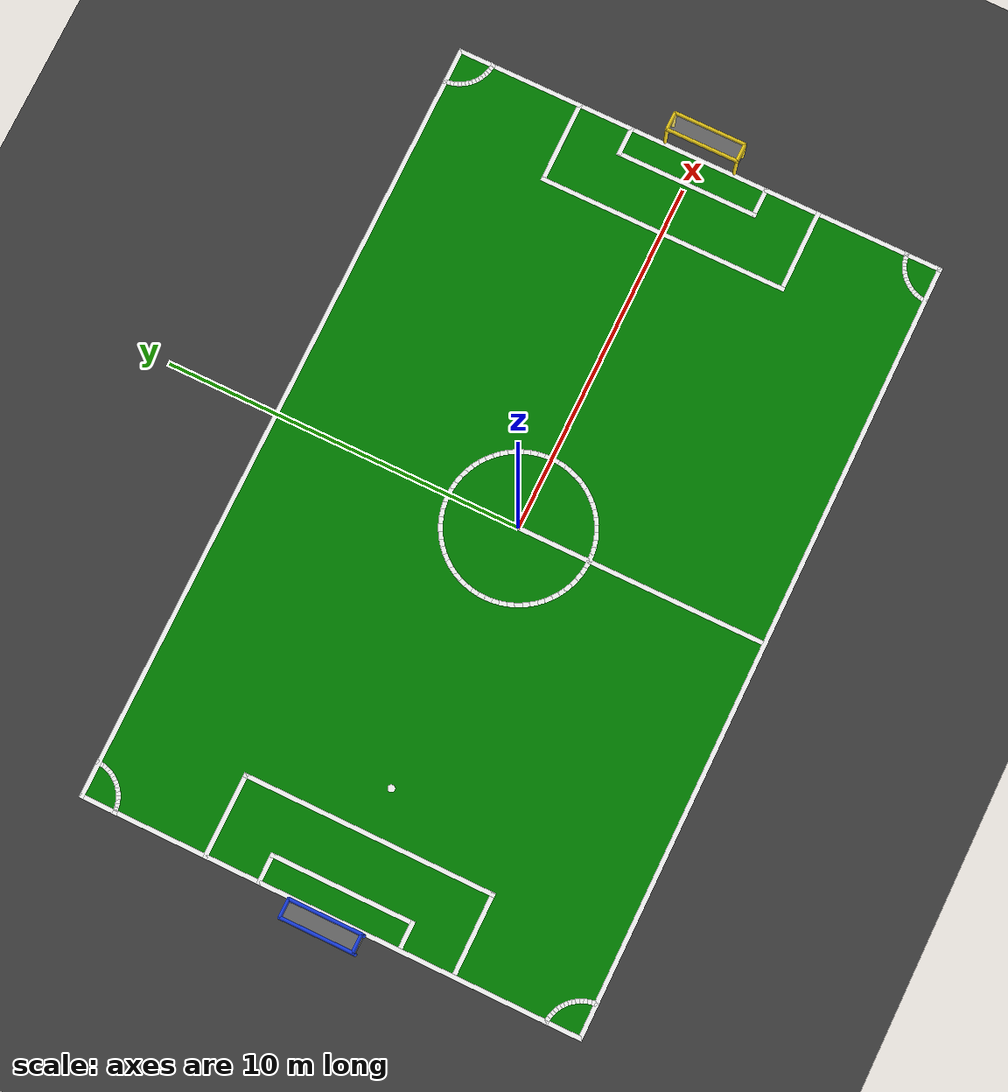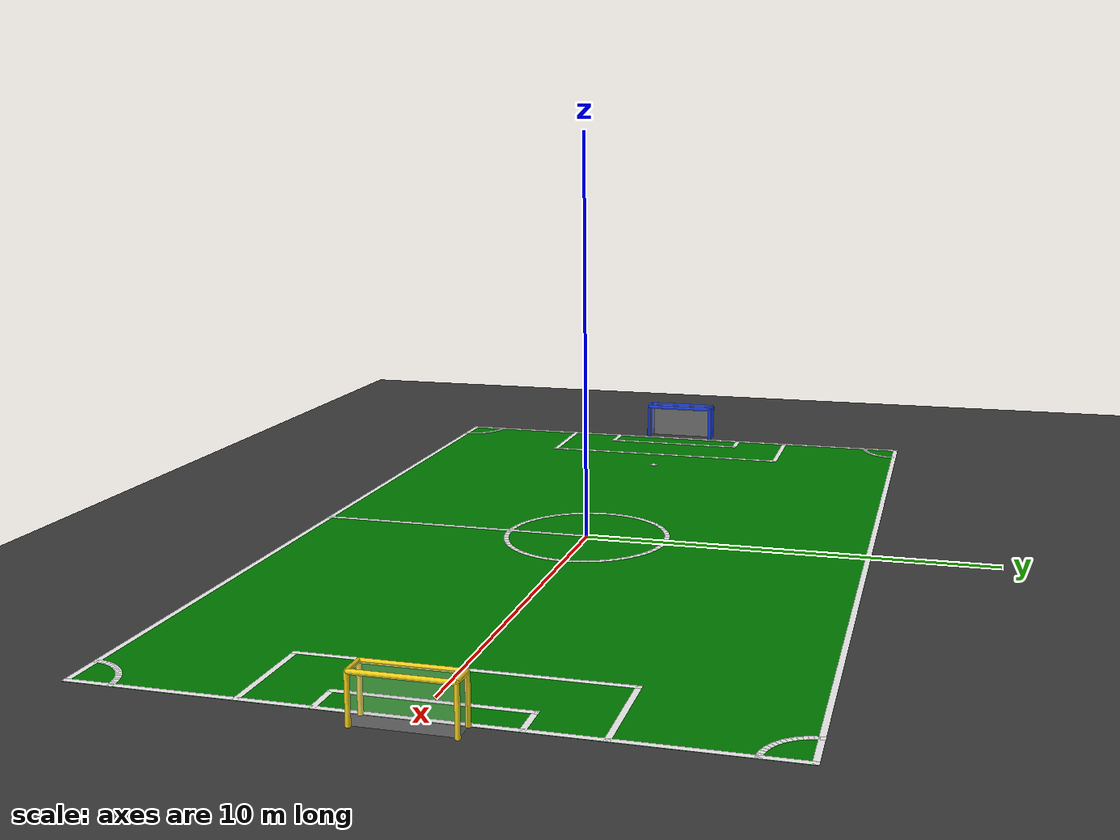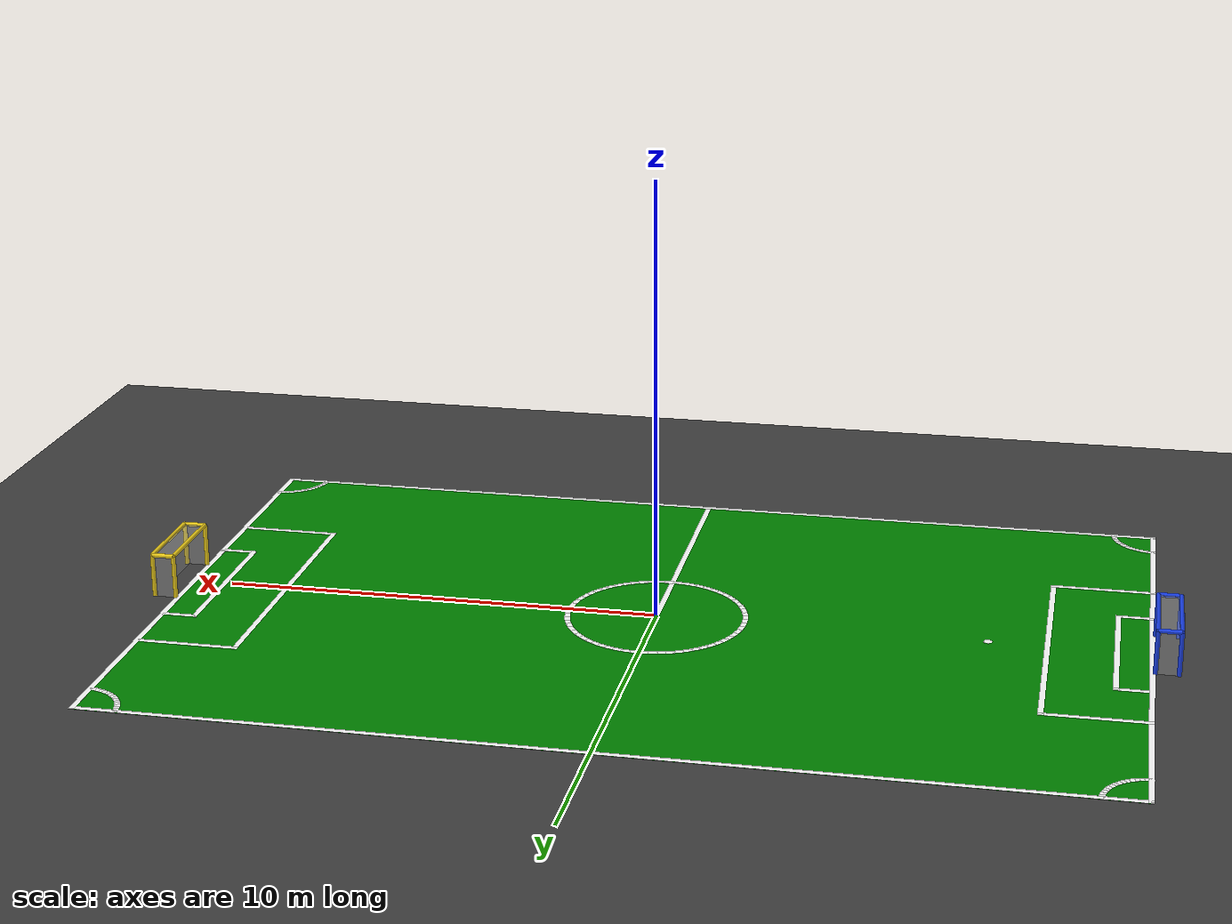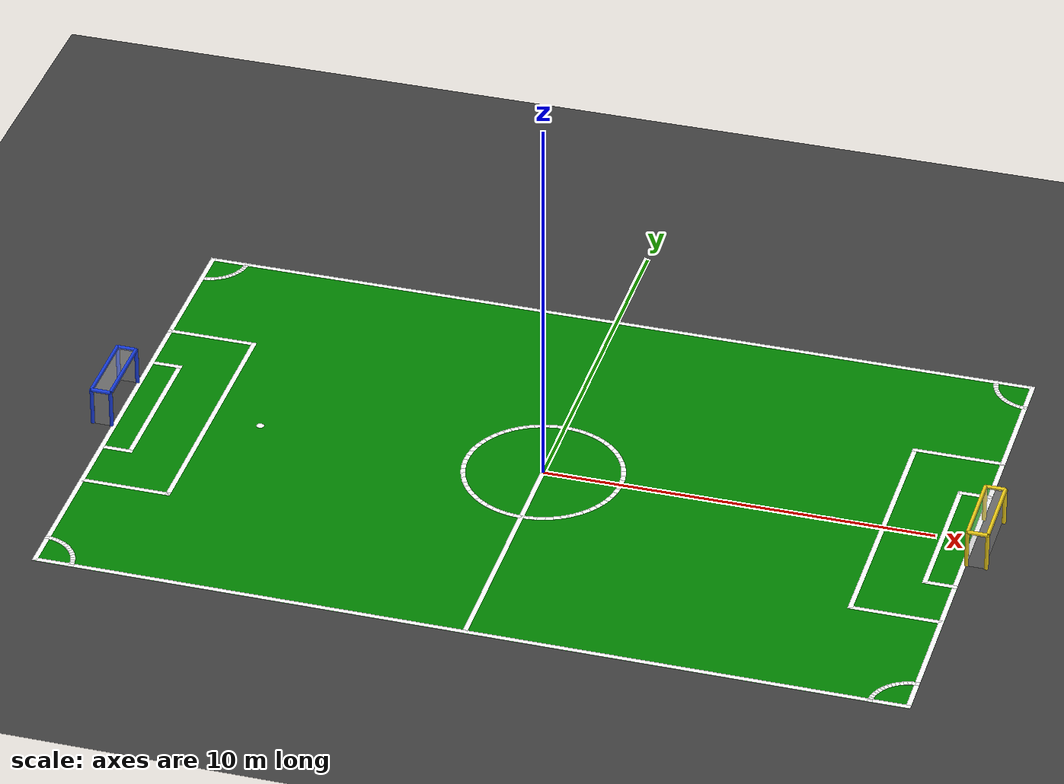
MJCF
<mujoco model="MuJoCo Model">
  <compiler angle="radian"/>

  <worldbody>
    <geom name="ground" size="0 0 0.01" type="plane" rgba="0.25 0.25 0.25 1"/>
    <camera name="top" pos="0 0 22"/>
    <light pos="0 0 20" dir="0 0 -1" type="directional"/>
    <body name="soccer_field">
      <geom name="field_pitch_1" size="11 7 0.0025" pos="0 0 0.0025" type="box" contype="0" conaffinity="0" group="2" mass="0" rgba="0 0.509804 0 1"/>
      <geom name="field_sideline_l_2" size="0.0625 7 0.0025" pos="-10.9375 0 0.0075" type="box" contype="0" conaffinity="0" group="2" mass="0" rgba="1 1 1 1"/>
      <geom name="field_sideline_r_3" size="0.0625 7 0.0025" pos="10.9375 0 0.0075" type="box" contype="0" conaffinity="0" group="2" mass="0" rgba="1 1 1 1"/>
      <geom name="field_endline_b_4" size="11 0.0625 0.0025" pos="0 -6.9375 0.0075" type="box" contype="0" conaffinity="0" group="2" mass="0" rgba="1 1 1 1"/>
      <geom name="field_endline_t_5" size="11 0.0625 0.0025" pos="0 6.9375 0.0075" type="box" contype="0" conaffinity="0" group="2" mass="0" rgba="1 1 1 1"/>
      <geom name="field_halfway_6" size="0.0625 7 0.0025" pos="0 0 0.0075" type="box" contype="0" conaffinity="0" group="2" mass="0" rgba="1 1 1 1"/>
      <geom name="field_center_mark_7" size="0.0625 0.0025" pos="0 0 0.0075" type="cylinder" contype="0" conaffinity="0" group="2" mass="0" rgba="1 1 1 1"/>
      <geom name="field_center_circle_8" size="0.106029 0.0625 0.0025" pos="1.99759 0.0981353 0.0075" quat="0.689541 0 0 0.724247" type="box" contype="0" conaffinity="0" group="2" mass="0" rgba="1 1 1 1"/>
      <geom name="field_center_circle_9" size="0.106029 0.0625 0.0025" pos="1.97835 0.293461 0.0075" quat="0.653173 0 0 0.757209" type="box" contype="0" conaffinity="0" group="2" mass="0" rgba="1 1 1 1"/>
      <geom name="field_center_circle_10" size="0.106029 0.0625 0.0025" pos="1.94006 0.48596 0.0075" quat="0.615232 0 0 0.788346" type="box" contype="0" conaffinity="0" group="2" mass="0" rgba="1 1 1 1"/>
      <geom name="field_center_circle_11" size="0.106029 0.0625 0.0025" pos="1.88309 0.67378 0.0075" quat="0.575808 0 0 0.817585" type="box" contype="0" conaffinity="0" group="2" mass="0" rgba="1 1 1 1"/>
      <geom name="field_center_circle_12" size="0.106029 0.0625 0.0025" pos="1.80798 0.85511 0.0075" quat="0.534998 0 0 0.844854" type="box" contype="0" conaffinity="0" group="2" mass="0" rgba="1 1 1 1"/>
      <geom name="field_center_circle_13" size="0.106029 0.0625 0.0025" pos="1.71546 1.02821 0.0075" quat="0.492898 0 0 0.870087" type="box" contype="0" conaffinity="0" group="2" mass="0" rgba="1 1 1 1"/>
      <geom name="field_center_circle_14" size="0.106029 0.0625 0.0025" pos="1.60642 1.1914 0.0075" quat="0.449611 0 0 0.893224" type="box" contype="0" conaffinity="0" group="2" mass="0" rgba="1 1 1 1"/>
      <geom name="field_center_circle_15" size="0.106029 0.0625 0.0025" pos="1.4819 1.34312 0.0075" quat="0.405241 0 0 0.91421" type="box" contype="0" conaffinity="0" group="2" mass="0" rgba="1 1 1 1"/>
      <geom name="field_center_circle_16" size="0.106029 0.0625 0.0025" pos="1.34312 1.4819 0.0075" quat="0.359895 0 0 0.932993" type="box" contype="0" conaffinity="0" group="2" mass="0" rgba="1 1 1 1"/>
      <geom name="field_center_circle_17" size="0.106029 0.0625 0.0025" pos="1.1914 1.60642 0.0075" quat="0.313682 0 0 0.949528" type="box" contype="0" conaffinity="0" group="2" mass="0" rgba="1 1 1 1"/>
      <geom name="field_center_circle_18" size="0.106029 0.0625 0.0025" pos="1.02821 1.71546 0.0075" quat="0.266713 0 0 0.963776" type="box" contype="0" conaffinity="0" group="2" mass="0" rgba="1 1 1 1"/>
      <geom name="field_center_circle_19" size="0.106029 0.0625 0.0025" pos="0.85511 1.80798 0.0075" quat="0.219101 0 0 0.975702" type="box" contype="0" conaffinity="0" group="2" mass="0" rgba="1 1 1 1"/>
      <geom name="field_center_circle_20" size="0.106029 0.0625 0.0025" pos="0.67378 1.88309 0.0075" quat="0.170962 0 0 0.985278" type="box" contype="0" conaffinity="0" group="2" mass="0" rgba="1 1 1 1"/>
      <geom name="field_center_circle_21" size="0.106029 0.0625 0.0025" pos="0.48596 1.94006 0.0075" quat="0.122411 0 0 0.99248" type="box" contype="0" conaffinity="0" group="2" mass="0" rgba="1 1 1 1"/>
      <geom name="field_center_circle_22" size="0.106029 0.0625 0.0025" pos="0.293461 1.97835 0.0075" quat="0.0735646 0 0 0.99729" type="box" contype="0" conaffinity="0" group="2" mass="0" rgba="1 1 1 1"/>
      <geom name="field_center_circle_23" size="0.106029 0.0625 0.0025" pos="0.0981353 1.99759 0.0075" quat="0.0245412 0 0 0.999699" type="box" contype="0" conaffinity="0" group="2" mass="0" rgba="1 1 1 1"/>
      <geom name="field_center_circle_24" size="0.106029 0.0625 0.0025" pos="-0.0981353 1.99759 0.0075" quat="-0.0245412 0 0 0.999699" type="box" contype="0" conaffinity="0" group="2" mass="0" rgba="1 1 1 1"/>
      <geom name="field_center_circle_25" size="0.106029 0.0625 0.0025" pos="-0.293461 1.97835 0.0075" quat="-0.0735646 0 0 0.99729" type="box" contype="0" conaffinity="0" group="2" mass="0" rgba="1 1 1 1"/>
      <geom name="field_center_circle_26" size="0.106029 0.0625 0.0025" pos="-0.48596 1.94006 0.0075" quat="-0.122411 0 0 0.99248" type="box" contype="0" conaffinity="0" group="2" mass="0" rgba="1 1 1 1"/>
      <geom name="field_center_circle_27" size="0.106029 0.0625 0.0025" pos="-0.67378 1.88309 0.0075" quat="-0.170962 0 0 0.985278" type="box" contype="0" conaffinity="0" group="2" mass="0" rgba="1 1 1 1"/>
      <geom name="field_center_circle_28" size="0.106029 0.0625 0.0025" pos="-0.85511 1.80798 0.0075" quat="-0.219101 0 0 0.975702" type="box" contype="0" conaffinity="0" group="2" mass="0" rgba="1 1 1 1"/>
      <geom name="field_center_circle_29" size="0.106029 0.0625 0.0025" pos="-1.02821 1.71546 0.0075" quat="-0.266713 0 0 0.963776" type="box" contype="0" conaffinity="0" group="2" mass="0" rgba="1 1 1 1"/>
      <geom name="field_center_circle_30" size="0.106029 0.0625 0.0025" pos="-1.1914 1.60642 0.0075" quat="-0.313682 0 0 0.949528" type="box" contype="0" conaffinity="0" group="2" mass="0" rgba="1 1 1 1"/>
      <geom name="field_center_circle_31" size="0.106029 0.0625 0.0025" pos="-1.34312 1.4819 0.0075" quat="-0.359895 0 0 0.932993" type="box" contype="0" conaffinity="0" group="2" mass="0" rgba="1 1 1 1"/>
      <geom name="field_center_circle_32" size="0.106029 0.0625 0.0025" pos="-1.4819 1.34312 0.0075" quat="-0.405241 0 0 0.91421" type="box" contype="0" conaffinity="0" group="2" mass="0" rgba="1 1 1 1"/>
      <geom name="field_center_circle_33" size="0.106029 0.0625 0.0025" pos="-1.60642 1.1914 0.0075" quat="-0.449611 0 0 0.893224" type="box" contype="0" conaffinity="0" group="2" mass="0" rgba="1 1 1 1"/>
      <geom name="field_center_circle_34" size="0.106029 0.0625 0.0025" pos="-1.71546 1.02821 0.0075" quat="-0.492898 0 0 0.870087" type="box" contype="0" conaffinity="0" group="2" mass="0" rgba="1 1 1 1"/>
      <geom name="field_center_circle_35" size="0.106029 0.0625 0.0025" pos="-1.80798 0.85511 0.0075" quat="-0.534998 0 0 0.844854" type="box" contype="0" conaffinity="0" group="2" mass="0" rgba="1 1 1 1"/>
      <geom name="field_center_circle_36" size="0.106029 0.0625 0.0025" pos="-1.88309 0.67378 0.0075" quat="-0.575808 0 0 0.817585" type="box" contype="0" conaffinity="0" group="2" mass="0" rgba="1 1 1 1"/>
      <geom name="field_center_circle_37" size="0.106029 0.0625 0.0025" pos="-1.94006 0.48596 0.0075" quat="-0.615232 0 0 0.788346" type="box" contype="0" conaffinity="0" group="2" mass="0" rgba="1 1 1 1"/>
      <geom name="field_center_circle_38" size="0.106029 0.0625 0.0025" pos="-1.97835 0.293461 0.0075" quat="-0.653173 0 0 0.757209" type="box" contype="0" conaffinity="0" group="2" mass="0" rgba="1 1 1 1"/>
      <geom name="field_center_circle_39" size="0.106029 0.0625 0.0025" pos="-1.99759 0.0981353 0.0075" quat="-0.689541 0 0 0.724247" type="box" contype="0" conaffinity="0" group="2" mass="0" rgba="1 1 1 1"/>
      <geom name="field_center_circle_40" size="0.106029 0.0625 0.0025" pos="-1.99759 -0.0981353 0.0075" quat="-0.724247 0 0 0.689541" type="box" contype="0" conaffinity="0" group="2" mass="0" rgba="1 1 1 1"/>
      <geom name="field_center_circle_41" size="0.106029 0.0625 0.0025" pos="-1.97835 -0.293461 0.0075" quat="-0.757209 0 0 0.653173" type="box" contype="0" conaffinity="0" group="2" mass="0" rgba="1 1 1 1"/>
      <geom name="field_center_circle_42" size="0.106029 0.0625 0.0025" pos="-1.94006 -0.48596 0.0075" quat="-0.788346 0 0 0.615232" type="box" contype="0" conaffinity="0" group="2" mass="0" rgba="1 1 1 1"/>
      <geom name="field_center_circle_43" size="0.106029 0.0625 0.0025" pos="-1.88309 -0.67378 0.0075" quat="-0.817585 0 0 0.575808" type="box" contype="0" conaffinity="0" group="2" mass="0" rgba="1 1 1 1"/>
      <geom name="field_center_circle_44" size="0.106029 0.0625 0.0025" pos="-1.80798 -0.85511 0.0075" quat="-0.844854 0 0 0.534998" type="box" contype="0" conaffinity="0" group="2" mass="0" rgba="1 1 1 1"/>
      <geom name="field_center_circle_45" size="0.106029 0.0625 0.0025" pos="-1.71546 -1.02821 0.0075" quat="-0.870087 0 0 0.492898" type="box" contype="0" conaffinity="0" group="2" mass="0" rgba="1 1 1 1"/>
      <geom name="field_center_circle_46" size="0.106029 0.0625 0.0025" pos="-1.60642 -1.1914 0.0075" quat="-0.893224 0 0 0.449611" type="box" contype="0" conaffinity="0" group="2" mass="0" rgba="1 1 1 1"/>
      <geom name="field_center_circle_47" size="0.106029 0.0625 0.0025" pos="-1.4819 -1.34312 0.0075" quat="-0.91421 0 0 0.405241" type="box" contype="0" conaffinity="0" group="2" mass="0" rgba="1 1 1 1"/>
      <geom name="field_center_circle_48" size="0.106029 0.0625 0.0025" pos="-1.34312 -1.4819 0.0075" quat="-0.932993 0 0 0.359895" type="box" contype="0" conaffinity="0" group="2" mass="0" rgba="1 1 1 1"/>
      <geom name="field_center_circle_49" size="0.106029 0.0625 0.0025" pos="-1.1914 -1.60642 0.0075" quat="-0.949528 0 0 0.313682" type="box" contype="0" conaffinity="0" group="2" mass="0" rgba="1 1 1 1"/>
      <geom name="field_center_circle_50" size="0.106029 0.0625 0.0025" pos="-1.02821 -1.71546 0.0075" quat="-0.963776 0 0 0.266713" type="box" contype="0" conaffinity="0" group="2" mass="0" rgba="1 1 1 1"/>
      <geom name="field_center_circle_51" size="0.106029 0.0625 0.0025" pos="-0.85511 -1.80798 0.0075" quat="-0.975702 0 0 0.219101" type="box" contype="0" conaffinity="0" group="2" mass="0" rgba="1 1 1 1"/>
      <geom name="field_center_circle_52" size="0.106029 0.0625 0.0025" pos="-0.67378 -1.88309 0.0075" quat="-0.985278 0 0 0.170962" type="box" contype="0" conaffinity="0" group="2" mass="0" rgba="1 1 1 1"/>
      <geom name="field_center_circle_53" size="0.106029 0.0625 0.0025" pos="-0.48596 -1.94006 0.0075" quat="-0.99248 0 0 0.122411" type="box" contype="0" conaffinity="0" group="2" mass="0" rgba="1 1 1 1"/>
      <geom name="field_center_circle_54" size="0.106029 0.0625 0.0025" pos="-0.293461 -1.97835 0.0075" quat="-0.99729 0 0 0.0735646" type="box" contype="0" conaffinity="0" group="2" mass="0" rgba="1 1 1 1"/>
      <geom name="field_center_circle_55" size="0.106029 0.0625 0.0025" pos="-0.0981353 -1.99759 0.0075" quat="-0.999699 0 0 0.0245412" type="box" contype="0" conaffinity="0" group="2" mass="0" rgba="1 1 1 1"/>
      <geom name="field_center_circle_56" size="0.106029 0.0625 0.0025" pos="0.0981353 -1.99759 0.0075" quat="-0.999699 0 0 -0.0245412" type="box" contype="0" conaffinity="0" group="2" mass="0" rgba="1 1 1 1"/>
      <geom name="field_center_circle_57" size="0.106029 0.0625 0.0025" pos="0.293461 -1.97835 0.0075" quat="-0.99729 0 0 -0.0735646" type="box" contype="0" conaffinity="0" group="2" mass="0" rgba="1 1 1 1"/>
      <geom name="field_center_circle_58" size="0.106029 0.0625 0.0025" pos="0.48596 -1.94006 0.0075" quat="-0.99248 0 0 -0.122411" type="box" contype="0" conaffinity="0" group="2" mass="0" rgba="1 1 1 1"/>
      <geom name="field_center_circle_59" size="0.106029 0.0625 0.0025" pos="0.67378 -1.88309 0.0075" quat="-0.985278 0 0 -0.170962" type="box" contype="0" conaffinity="0" group="2" mass="0" rgba="1 1 1 1"/>
      <geom name="field_center_circle_60" size="0.106029 0.0625 0.0025" pos="0.85511 -1.80798 0.0075" quat="-0.975702 0 0 -0.219101" type="box" contype="0" conaffinity="0" group="2" mass="0" rgba="1 1 1 1"/>
      <geom name="field_center_circle_61" size="0.106029 0.0625 0.0025" pos="1.02821 -1.71546 0.0075" quat="-0.963776 0 0 -0.266713" type="box" contype="0" conaffinity="0" group="2" mass="0" rgba="1 1 1 1"/>
      <geom name="field_center_circle_62" size="0.106029 0.0625 0.0025" pos="1.1914 -1.60642 0.0075" quat="-0.949528 0 0 -0.313682" type="box" contype="0" conaffinity="0" group="2" mass="0" rgba="1 1 1 1"/>
      <geom name="field_center_circle_63" size="0.106029 0.0625 0.0025" pos="1.34312 -1.4819 0.0075" quat="-0.932993 0 0 -0.359895" type="box" contype="0" conaffinity="0" group="2" mass="0" rgba="1 1 1 1"/>
      <geom name="field_center_circle_64" size="0.106029 0.0625 0.0025" pos="1.4819 -1.34312 0.0075" quat="-0.91421 0 0 -0.405241" type="box" contype="0" conaffinity="0" group="2" mass="0" rgba="1 1 1 1"/>
      <geom name="field_center_circle_65" size="0.106029 0.0625 0.0025" pos="1.60642 -1.1914 0.0075" quat="-0.893224 0 0 -0.449611" type="box" contype="0" conaffinity="0" group="2" mass="0" rgba="1 1 1 1"/>
      <geom name="field_center_circle_66" size="0.106029 0.0625 0.0025" pos="1.71546 -1.02821 0.0075" quat="-0.870087 0 0 -0.492898" type="box" contype="0" conaffinity="0" group="2" mass="0" rgba="1 1 1 1"/>
      <geom name="field_center_circle_67" size="0.106029 0.0625 0.0025" pos="1.80798 -0.85511 0.0075" quat="-0.844854 0 0 -0.534998" type="box" contype="0" conaffinity="0" group="2" mass="0" rgba="1 1 1 1"/>
      <geom name="field_center_circle_68" size="0.106029 0.0625 0.0025" pos="1.88309 -0.67378 0.0075" quat="-0.817585 0 0 -0.575808" type="box" contype="0" conaffinity="0" group="2" mass="0" rgba="1 1 1 1"/>
      <geom name="field_center_circle_69" size="0.106029 0.0625 0.0025" pos="1.94006 -0.48596 0.0075" quat="-0.788346 0 0 -0.615232" type="box" contype="0" conaffinity="0" group="2" mass="0" rgba="1 1 1 1"/>
      <geom name="field_center_circle_70" size="0.106029 0.0625 0.0025" pos="1.97835 -0.293461 0.0075" quat="-0.757209 0 0 -0.653173" type="box" contype="0" conaffinity="0" group="2" mass="0" rgba="1 1 1 1"/>
      <geom name="field_center_circle_71" size="0.106029 0.0625 0.0025" pos="1.99759 -0.0981353 0.0075" quat="-0.724247 0 0 -0.689541" type="box" contype="0" conaffinity="0" group="2" mass="0" rgba="1 1 1 1"/>
      <geom name="field_goal_area_front_72" size="0.0625 2.0125 0.0025" pos="10.1875 0 0.0075" type="box" contype="0" conaffinity="0" group="2" mass="0" rgba="1 1 1 1"/>
      <geom name="field_goal_area_side_73" size="0.4375 0.0625 0.0025" pos="10.5625 1.95 0.0075" type="box" contype="0" conaffinity="0" group="2" mass="0" rgba="1 1 1 1"/>
      <geom name="field_goal_area_side_74" size="0.4375 0.0625 0.0025" pos="10.5625 -1.95 0.0075" type="box" contype="0" conaffinity="0" group="2" mass="0" rgba="1 1 1 1"/>
      <geom name="field_goal_area_front_75" size="0.0625 2.0125 0.0025" pos="-10.1875 0 0.0075" type="box" contype="0" conaffinity="0" group="2" mass="0" rgba="1 1 1 1"/>
      <geom name="field_goal_area_side_76" size="0.4375 0.0625 0.0025" pos="-10.5625 1.95 0.0075" type="box" contype="0" conaffinity="0" group="2" mass="0" rgba="1 1 1 1"/>
      <geom name="field_goal_area_side_77" size="0.4375 0.0625 0.0025" pos="-10.5625 -1.95 0.0075" type="box" contype="0" conaffinity="0" group="2" mass="0" rgba="1 1 1 1"/>
      <geom name="field_penalty_area_front_78" size="0.0625 3.5125 0.0025" pos="8.6875 0 0.0075" type="box" contype="0" conaffinity="0" group="2" mass="0" rgba="1 1 1 1"/>
      <geom name="field_penalty_area_side_79" size="1.1875 0.0625 0.0025" pos="9.8125 3.45 0.0075" type="box" contype="0" conaffinity="0" group="2" mass="0" rgba="1 1 1 1"/>
      <geom name="field_penalty_area_side_80" size="1.1875 0.0625 0.0025" pos="9.8125 -3.45 0.0075" type="box" contype="0" conaffinity="0" group="2" mass="0" rgba="1 1 1 1"/>
      <geom name="field_penalty_area_front_81" size="0.0625 3.5125 0.0025" pos="-8.6875 0 0.0075" type="box" contype="0" conaffinity="0" group="2" mass="0" rgba="1 1 1 1"/>
      <geom name="field_penalty_area_side_82" size="1.1875 0.0625 0.0025" pos="-9.8125 3.45 0.0075" type="box" contype="0" conaffinity="0" group="2" mass="0" rgba="1 1 1 1"/>
      <geom name="field_penalty_area_side_83" size="1.1875 0.0625 0.0025" pos="-9.8125 -3.45 0.0075" type="box" contype="0" conaffinity="0" group="2" mass="0" rgba="1 1 1 1"/>
      <geom name="field_penalty_mark_84" size="0.1 0.0025" pos="7.4 0 0.0075" type="cylinder" contype="0" conaffinity="0" group="2" mass="0" rgba="1 1 1 1"/>
      <geom name="field_penalty_mark_85" size="0.1 0.0025" pos="-7.4 0 0.0075" type="cylinder" contype="0" conaffinity="0" group="2" mass="0" rgba="1 1 1 1"/>
      <geom name="field_corner_arc_86" size="0.0530144 0.0625 0.0025" pos="10.0012 6.95093 0.0075" quat="-0.724247 0 0 0.689541" type="box" contype="0" conaffinity="0" group="2" mass="0" rgba="1 1 1 1"/>
      <geom name="field_corner_arc_87" size="0.0530144 0.0625 0.0025" pos="10.0108 6.85327 0.0075" quat="-0.757209 0 0 0.653173" type="box" contype="0" conaffinity="0" group="2" mass="0" rgba="1 1 1 1"/>
      <geom name="field_corner_arc_88" size="0.0530144 0.0625 0.0025" pos="10.03 6.75702 0.0075" quat="-0.788346 0 0 0.615232" type="box" contype="0" conaffinity="0" group="2" mass="0" rgba="1 1 1 1"/>
      <geom name="field_corner_arc_89" size="0.0530144 0.0625 0.0025" pos="10.0585 6.66311 0.0075" quat="-0.817585 0 0 0.575808" type="box" contype="0" conaffinity="0" group="2" mass="0" rgba="1 1 1 1"/>
      <geom name="field_corner_arc_90" size="0.0530144 0.0625 0.0025" pos="10.096 6.57244 0.0075" quat="-0.844854 0 0 0.534998" type="box" contype="0" conaffinity="0" group="2" mass="0" rgba="1 1 1 1"/>
      <geom name="field_corner_arc_91" size="0.0530144 0.0625 0.0025" pos="10.1423 6.4859 0.0075" quat="-0.870087 0 0 0.492898" type="box" contype="0" conaffinity="0" group="2" mass="0" rgba="1 1 1 1"/>
      <geom name="field_corner_arc_92" size="0.0530144 0.0625 0.0025" pos="10.1968 6.4043 0.0075" quat="-0.893224 0 0 0.449611" type="box" contype="0" conaffinity="0" group="2" mass="0" rgba="1 1 1 1"/>
      <geom name="field_corner_arc_93" size="0.0530144 0.0625 0.0025" pos="10.259 6.32844 0.0075" quat="-0.91421 0 0 0.405241" type="box" contype="0" conaffinity="0" group="2" mass="0" rgba="1 1 1 1"/>
      <geom name="field_corner_arc_94" size="0.0530144 0.0625 0.0025" pos="10.3284 6.25905 0.0075" quat="-0.932993 0 0 0.359895" type="box" contype="0" conaffinity="0" group="2" mass="0" rgba="1 1 1 1"/>
      <geom name="field_corner_arc_95" size="0.0530144 0.0625 0.0025" pos="10.4043 6.19679 0.0075" quat="-0.949528 0 0 0.313682" type="box" contype="0" conaffinity="0" group="2" mass="0" rgba="1 1 1 1"/>
      <geom name="field_corner_arc_96" size="0.0530144 0.0625 0.0025" pos="10.4859 6.14227 0.0075" quat="-0.963776 0 0 0.266713" type="box" contype="0" conaffinity="0" group="2" mass="0" rgba="1 1 1 1"/>
      <geom name="field_corner_arc_97" size="0.0530144 0.0625 0.0025" pos="10.5724 6.09601 0.0075" quat="-0.975702 0 0 0.219101" type="box" contype="0" conaffinity="0" group="2" mass="0" rgba="1 1 1 1"/>
      <geom name="field_corner_arc_98" size="0.0530144 0.0625 0.0025" pos="10.6631 6.05846 0.0075" quat="-0.985278 0 0 0.170962" type="box" contype="0" conaffinity="0" group="2" mass="0" rgba="1 1 1 1"/>
      <geom name="field_corner_arc_99" size="0.0530144 0.0625 0.0025" pos="10.757 6.02997 0.0075" quat="-0.99248 0 0 0.122411" type="box" contype="0" conaffinity="0" group="2" mass="0" rgba="1 1 1 1"/>
      <geom name="field_corner_arc_100" size="0.0530144 0.0625 0.0025" pos="10.8533 6.01082 0.0075" quat="-0.99729 0 0 0.0735646" type="box" contype="0" conaffinity="0" group="2" mass="0" rgba="1 1 1 1"/>
      <geom name="field_corner_arc_101" size="0.0530144 0.0625 0.0025" pos="10.9509 6.0012 0.0075" quat="-0.999699 0 0 0.0245412" type="box" contype="0" conaffinity="0" group="2" mass="0" rgba="1 1 1 1"/>
      <geom name="field_corner_arc_102" size="0.0530144 0.0625 0.0025" pos="10.9509 -6.0012 0.0075" quat="-0.0245412 0 0 0.999699" type="box" contype="0" conaffinity="0" group="2" mass="0" rgba="1 1 1 1"/>
      <geom name="field_corner_arc_103" size="0.0530144 0.0625 0.0025" pos="10.8533 -6.01082 0.0075" quat="-0.0735646 0 0 0.99729" type="box" contype="0" conaffinity="0" group="2" mass="0" rgba="1 1 1 1"/>
      <geom name="field_corner_arc_104" size="0.0530144 0.0625 0.0025" pos="10.757 -6.02997 0.0075" quat="-0.122411 0 0 0.99248" type="box" contype="0" conaffinity="0" group="2" mass="0" rgba="1 1 1 1"/>
      <geom name="field_corner_arc_105" size="0.0530144 0.0625 0.0025" pos="10.6631 -6.05846 0.0075" quat="-0.170962 0 0 0.985278" type="box" contype="0" conaffinity="0" group="2" mass="0" rgba="1 1 1 1"/>
      <geom name="field_corner_arc_106" size="0.0530144 0.0625 0.0025" pos="10.5724 -6.09601 0.0075" quat="-0.219101 0 0 0.975702" type="box" contype="0" conaffinity="0" group="2" mass="0" rgba="1 1 1 1"/>
      <geom name="field_corner_arc_107" size="0.0530144 0.0625 0.0025" pos="10.4859 -6.14227 0.0075" quat="-0.266713 0 0 0.963776" type="box" contype="0" conaffinity="0" group="2" mass="0" rgba="1 1 1 1"/>
      <geom name="field_corner_arc_108" size="0.0530144 0.0625 0.0025" pos="10.4043 -6.19679 0.0075" quat="-0.313682 0 0 0.949528" type="box" contype="0" conaffinity="0" group="2" mass="0" rgba="1 1 1 1"/>
      <geom name="field_corner_arc_109" size="0.0530144 0.0625 0.0025" pos="10.3284 -6.25905 0.0075" quat="-0.359895 0 0 0.932993" type="box" contype="0" conaffinity="0" group="2" mass="0" rgba="1 1 1 1"/>
      <geom name="field_corner_arc_110" size="0.0530144 0.0625 0.0025" pos="10.259 -6.32844 0.0075" quat="-0.405241 0 0 0.91421" type="box" contype="0" conaffinity="0" group="2" mass="0" rgba="1 1 1 1"/>
      <geom name="field_corner_arc_111" size="0.0530144 0.0625 0.0025" pos="10.1968 -6.4043 0.0075" quat="-0.449611 0 0 0.893224" type="box" contype="0" conaffinity="0" group="2" mass="0" rgba="1 1 1 1"/>
      <geom name="field_corner_arc_112" size="0.0530144 0.0625 0.0025" pos="10.1423 -6.4859 0.0075" quat="-0.492898 0 0 0.870087" type="box" contype="0" conaffinity="0" group="2" mass="0" rgba="1 1 1 1"/>
      <geom name="field_corner_arc_113" size="0.0530144 0.0625 0.0025" pos="10.096 -6.57244 0.0075" quat="-0.534998 0 0 0.844854" type="box" contype="0" conaffinity="0" group="2" mass="0" rgba="1 1 1 1"/>
      <geom name="field_corner_arc_114" size="0.0530144 0.0625 0.0025" pos="10.0585 -6.66311 0.0075" quat="-0.575808 0 0 0.817585" type="box" contype="0" conaffinity="0" group="2" mass="0" rgba="1 1 1 1"/>
      <geom name="field_corner_arc_115" size="0.0530144 0.0625 0.0025" pos="10.03 -6.75702 0.0075" quat="-0.615232 0 0 0.788346" type="box" contype="0" conaffinity="0" group="2" mass="0" rgba="1 1 1 1"/>
      <geom name="field_corner_arc_116" size="0.0530144 0.0625 0.0025" pos="10.0108 -6.85327 0.0075" quat="-0.653173 0 0 0.757209" type="box" contype="0" conaffinity="0" group="2" mass="0" rgba="1 1 1 1"/>
      <geom name="field_corner_arc_117" size="0.0530144 0.0625 0.0025" pos="10.0012 -6.95093 0.0075" quat="-0.689541 0 0 0.724247" type="box" contype="0" conaffinity="0" group="2" mass="0" rgba="1 1 1 1"/>
      <geom name="field_corner_arc_118" size="0.0530144 0.0625 0.0025" pos="-10.9509 6.0012 0.0075" quat="-0.999699 0 0 -0.0245412" type="box" contype="0" conaffinity="0" group="2" mass="0" rgba="1 1 1 1"/>
      <geom name="field_corner_arc_119" size="0.0530144 0.0625 0.0025" pos="-10.8533 6.01082 0.0075" quat="-0.99729 0 0 -0.0735646" type="box" contype="0" conaffinity="0" group="2" mass="0" rgba="1 1 1 1"/>
      <geom name="field_corner_arc_120" size="0.0530144 0.0625 0.0025" pos="-10.757 6.02997 0.0075" quat="-0.99248 0 0 -0.122411" type="box" contype="0" conaffinity="0" group="2" mass="0" rgba="1 1 1 1"/>
      <geom name="field_corner_arc_121" size="0.0530144 0.0625 0.0025" pos="-10.6631 6.05846 0.0075" quat="-0.985278 0 0 -0.170962" type="box" contype="0" conaffinity="0" group="2" mass="0" rgba="1 1 1 1"/>
      <geom name="field_corner_arc_122" size="0.0530144 0.0625 0.0025" pos="-10.5724 6.09601 0.0075" quat="-0.975702 0 0 -0.219101" type="box" contype="0" conaffinity="0" group="2" mass="0" rgba="1 1 1 1"/>
      <geom name="field_corner_arc_123" size="0.0530144 0.0625 0.0025" pos="-10.4859 6.14227 0.0075" quat="-0.963776 0 0 -0.266713" type="box" contype="0" conaffinity="0" group="2" mass="0" rgba="1 1 1 1"/>
      <geom name="field_corner_arc_124" size="0.0530144 0.0625 0.0025" pos="-10.4043 6.19679 0.0075" quat="-0.949528 0 0 -0.313682" type="box" contype="0" conaffinity="0" group="2" mass="0" rgba="1 1 1 1"/>
      <geom name="field_corner_arc_125" size="0.0530144 0.0625 0.0025" pos="-10.3284 6.25905 0.0075" quat="-0.932993 0 0 -0.359895" type="box" contype="0" conaffinity="0" group="2" mass="0" rgba="1 1 1 1"/>
      <geom name="field_corner_arc_126" size="0.0530144 0.0625 0.0025" pos="-10.259 6.32844 0.0075" quat="-0.91421 0 0 -0.405241" type="box" contype="0" conaffinity="0" group="2" mass="0" rgba="1 1 1 1"/>
      <geom name="field_corner_arc_127" size="0.0530144 0.0625 0.0025" pos="-10.1968 6.4043 0.0075" quat="-0.893224 0 0 -0.449611" type="box" contype="0" conaffinity="0" group="2" mass="0" rgba="1 1 1 1"/>
      <geom name="field_corner_arc_128" size="0.0530144 0.0625 0.0025" pos="-10.1423 6.4859 0.0075" quat="-0.870087 0 0 -0.492898" type="box" contype="0" conaffinity="0" group="2" mass="0" rgba="1 1 1 1"/>
      <geom name="field_corner_arc_129" size="0.0530144 0.0625 0.0025" pos="-10.096 6.57244 0.0075" quat="-0.844854 0 0 -0.534998" type="box" contype="0" conaffinity="0" group="2" mass="0" rgba="1 1 1 1"/>
      <geom name="field_corner_arc_130" size="0.0530144 0.0625 0.0025" pos="-10.0585 6.66311 0.0075" quat="-0.817585 0 0 -0.575808" type="box" contype="0" conaffinity="0" group="2" mass="0" rgba="1 1 1 1"/>
      <geom name="field_corner_arc_131" size="0.0530144 0.0625 0.0025" pos="-10.03 6.75702 0.0075" quat="-0.788346 0 0 -0.615232" type="box" contype="0" conaffinity="0" group="2" mass="0" rgba="1 1 1 1"/>
      <geom name="field_corner_arc_132" size="0.0530144 0.0625 0.0025" pos="-10.0108 6.85327 0.0075" quat="-0.757209 0 0 -0.653173" type="box" contype="0" conaffinity="0" group="2" mass="0" rgba="1 1 1 1"/>
      <geom name="field_corner_arc_133" size="0.0530144 0.0625 0.0025" pos="-10.0012 6.95093 0.0075" quat="-0.724247 0 0 -0.689541" type="box" contype="0" conaffinity="0" group="2" mass="0" rgba="1 1 1 1"/>
      <geom name="field_corner_arc_134" size="0.0530144 0.0625 0.0025" pos="-10.0012 -6.95093 0.0075" quat="0.689541 0 0 0.724247" type="box" contype="0" conaffinity="0" group="2" mass="0" rgba="1 1 1 1"/>
      <geom name="field_corner_arc_135" size="0.0530144 0.0625 0.0025" pos="-10.0108 -6.85327 0.0075" quat="0.653173 0 0 0.757209" type="box" contype="0" conaffinity="0" group="2" mass="0" rgba="1 1 1 1"/>
      <geom name="field_corner_arc_136" size="0.0530144 0.0625 0.0025" pos="-10.03 -6.75702 0.0075" quat="0.615232 0 0 0.788346" type="box" contype="0" conaffinity="0" group="2" mass="0" rgba="1 1 1 1"/>
      <geom name="field_corner_arc_137" size="0.0530144 0.0625 0.0025" pos="-10.0585 -6.66311 0.0075" quat="0.575808 0 0 0.817585" type="box" contype="0" conaffinity="0" group="2" mass="0" rgba="1 1 1 1"/>
      <geom name="field_corner_arc_138" size="0.0530144 0.0625 0.0025" pos="-10.096 -6.57244 0.0075" quat="0.534998 0 0 0.844854" type="box" contype="0" conaffinity="0" group="2" mass="0" rgba="1 1 1 1"/>
      <geom name="field_corner_arc_139" size="0.0530144 0.0625 0.0025" pos="-10.1423 -6.4859 0.0075" quat="0.492898 0 0 0.870087" type="box" contype="0" conaffinity="0" group="2" mass="0" rgba="1 1 1 1"/>
      <geom name="field_corner_arc_140" size="0.0530144 0.0625 0.0025" pos="-10.1968 -6.4043 0.0075" quat="0.449611 0 0 0.893224" type="box" contype="0" conaffinity="0" group="2" mass="0" rgba="1 1 1 1"/>
      <geom name="field_corner_arc_141" size="0.0530144 0.0625 0.0025" pos="-10.259 -6.32844 0.0075" quat="0.405241 0 0 0.91421" type="box" contype="0" conaffinity="0" group="2" mass="0" rgba="1 1 1 1"/>
      <geom name="field_corner_arc_142" size="0.0530144 0.0625 0.0025" pos="-10.3284 -6.25905 0.0075" quat="0.359895 0 0 0.932993" type="box" contype="0" conaffinity="0" group="2" mass="0" rgba="1 1 1 1"/>
      <geom name="field_corner_arc_143" size="0.0530144 0.0625 0.0025" pos="-10.4043 -6.19679 0.0075" quat="0.313682 0 0 0.949528" type="box" contype="0" conaffinity="0" group="2" mass="0" rgba="1 1 1 1"/>
      <geom name="field_corner_arc_144" size="0.0530144 0.0625 0.0025" pos="-10.4859 -6.14227 0.0075" quat="0.266713 0 0 0.963776" type="box" contype="0" conaffinity="0" group="2" mass="0" rgba="1 1 1 1"/>
      <geom name="field_corner_arc_145" size="0.0530144 0.0625 0.0025" pos="-10.5724 -6.09601 0.0075" quat="0.219101 0 0 0.975702" type="box" contype="0" conaffinity="0" group="2" mass="0" rgba="1 1 1 1"/>
      <geom name="field_corner_arc_146" size="0.0530144 0.0625 0.0025" pos="-10.6631 -6.05846 0.0075" quat="0.170962 0 0 0.985278" type="box" contype="0" conaffinity="0" group="2" mass="0" rgba="1 1 1 1"/>
      <geom name="field_corner_arc_147" size="0.0530144 0.0625 0.0025" pos="-10.757 -6.02997 0.0075" quat="0.122411 0 0 0.99248" type="box" contype="0" conaffinity="0" group="2" mass="0" rgba="1 1 1 1"/>
      <geom name="field_corner_arc_148" size="0.0530144 0.0625 0.0025" pos="-10.8533 -6.01082 0.0075" quat="0.0735646 0 0 0.99729" type="box" contype="0" conaffinity="0" group="2" mass="0" rgba="1 1 1 1"/>
      <geom name="field_corner_arc_149" size="0.0530144 0.0625 0.0025" pos="-10.9509 -6.0012 0.0075" quat="0.0245412 0 0 0.999699" type="box" contype="0" conaffinity="0" group="2" mass="0" rgba="1 1 1 1"/>
      <geom name="field_goal_post_150" size="0.05 0.5" pos="11 1 0.5" type="cylinder" group="2" mass="0" rgba="0.95 0.82 0.1 1"/>
      <geom name="field_goal_post_151" size="0.05 0.5" pos="11 -1 0.5" type="cylinder" group="2" mass="0" rgba="0.95 0.82 0.1 1"/>
      <geom name="field_goal_post_152" size="0.05 0.5" pos="11.5 1 0.5" type="cylinder" group="2" mass="0" rgba="0.95 0.82 0.1 1"/>
      <geom name="field_goal_post_153" size="0.05 0.5" pos="11.5 -1 0.5" type="cylinder" group="2" mass="0" rgba="0.95 0.82 0.1 1"/>
      <geom name="field_goal_post_154" size="0.05 1" pos="11 0 1" quat="0.707107 0.707107 0 0" type="cylinder" group="2" mass="0" rgba="0.95 0.82 0.1 1"/>
      <geom name="field_goal_post_155" size="0.05 1" pos="11.5 0 1" quat="0.707107 0.707107 0 0" type="cylinder" group="2" mass="0" rgba="0.95 0.82 0.1 1"/>
      <geom name="field_goal_post_156" size="0.05 0.25" pos="11.25 1 1" quat="0.707107 0 0.707107 0" type="cylinder" group="2" mass="0" rgba="0.95 0.82 0.1 1"/>
      <geom name="field_goal_post_157" size="0.05 0.25" pos="11.25 -1 1" quat="0.707107 0 0.707107 0" type="cylinder" group="2" mass="0" rgba="0.95 0.82 0.1 1"/>
      <geom name="field_goal_net_158" size="0.005 1 0.5" pos="11.45 0 0.5" type="box" contype="0" conaffinity="0" group="2" mass="0" rgba="0.85 0.85 0.85 0.3"/>
      <geom name="field_goal_net_159" size="0.25 1 0.005" pos="11.25 0 1" type="box" contype="0" conaffinity="0" group="2" mass="0" rgba="0.85 0.85 0.85 0.3"/>
      <geom name="field_goal_net_160" size="0.25 0.005 0.5" pos="11.25 1 0.5" type="box" contype="0" conaffinity="0" group="2" mass="0" rgba="0.85 0.85 0.85 0.3"/>
      <geom name="field_goal_net_161" size="0.25 0.005 0.5" pos="11.25 -1 0.5" type="box" contype="0" conaffinity="0" group="2" mass="0" rgba="0.85 0.85 0.85 0.3"/>
      <geom name="field_goal_post_162" size="0.05 0.5" pos="-11 1 0.5" type="cylinder" group="2" mass="0" rgba="0.1 0.25 0.9 1"/>
      <geom name="field_goal_post_163" size="0.05 0.5" pos="-11 -1 0.5" type="cylinder" group="2" mass="0" rgba="0.1 0.25 0.9 1"/>
      <geom name="field_goal_post_164" size="0.05 0.5" pos="-11.5 1 0.5" type="cylinder" group="2" mass="0" rgba="0.1 0.25 0.9 1"/>
      <geom name="field_goal_post_165" size="0.05 0.5" pos="-11.5 -1 0.5" type="cylinder" group="2" mass="0" rgba="0.1 0.25 0.9 1"/>
      <geom name="field_goal_post_166" size="0.05 1" pos="-11 0 1" quat="0.707107 0.707107 0 0" type="cylinder" group="2" mass="0" rgba="0.1 0.25 0.9 1"/>
      <geom name="field_goal_post_167" size="0.05 1" pos="-11.5 0 1" quat="0.707107 0.707107 0 0" type="cylinder" group="2" mass="0" rgba="0.1 0.25 0.9 1"/>
      <geom name="field_goal_post_168" size="0.05 0.25" pos="-11.25 1 1" quat="0.707107 0 0.707107 0" type="cylinder" group="2" mass="0" rgba="0.1 0.25 0.9 1"/>
      <geom name="field_goal_post_169" size="0.05 0.25" pos="-11.25 -1 1" quat="0.707107 0 0.707107 0" type="cylinder" group="2" mass="0" rgba="0.1 0.25 0.9 1"/>
      <geom name="field_goal_net_170" size="0.005 1 0.5" pos="-11.45 0 0.5" type="box" contype="0" conaffinity="0" group="2" mass="0" rgba="0.85 0.85 0.85 0.3"/>
      <geom name="field_goal_net_171" size="0.25 1 0.005" pos="-11.25 0 1" type="box" contype="0" conaffinity="0" group="2" mass="0" rgba="0.85 0.85 0.85 0.3"/>
      <geom name="field_goal_net_172" size="0.25 0.005 0.5" pos="-11.25 1 0.5" type="box" contype="0" conaffinity="0" group="2" mass="0" rgba="0.85 0.85 0.85 0.3"/>
      <geom name="field_goal_net_173" size="0.25 0.005 0.5" pos="-11.25 -1 0.5" type="box" contype="0" conaffinity="0" group="2" mass="0" rgba="0.85 0.85 0.85 0.3"/>
    </body>
  </worldbody>
</mujoco>
